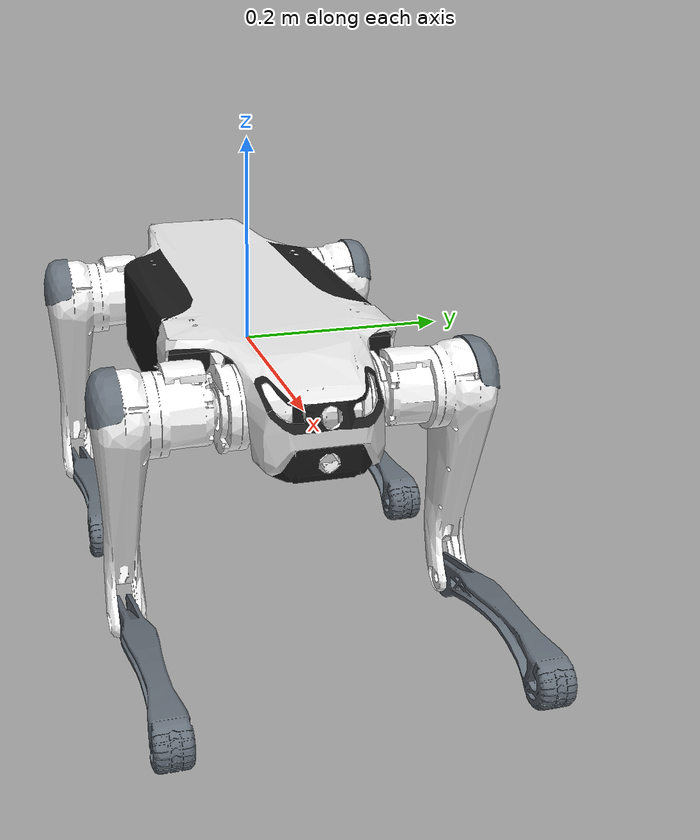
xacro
<?xml version="1.0"?>

<robot name="lite3" xmlns:xacro="http://www.ros.org/wiki/xacro">

  <xacro:include filename="$(find lite3_description)/xacro/const.xacro"/>
  <xacro:include filename="$(find lite3_description)/xacro/leg.xacro"/>

  <xacro:arg name="GAZEBO" default="false"/>
  <xacro:arg name="CLASSIC" default="false"/>

  <xacro:if value="$(arg GAZEBO)">
    <xacro:if value="$(arg CLASSIC)">
      <xacro:include filename="$(find lite3_description)/xacro/gazebo_classic.xacro"/>
    </xacro:if>
    <xacro:unless value="$(arg CLASSIC)">
      <xacro:include filename="$(find lite3_description)/xacro/gazebo.xacro"/>
    </xacro:unless>
  </xacro:if>
  <xacro:unless value="$(arg GAZEBO)">
    <xacro:include filename="$(find lite3_description)/xacro/ros2_control.xacro"/>
  </xacro:unless>

  <link name="base">
    <visual>
      <origin rpy="0 0 0" xyz="0 0 0"/>
      <geometry>
        <box size="0.001 0.001 0.001"/>
      </geometry>
    </visual>
  </link>

  <joint name="floating_base" type="fixed">
    <origin rpy="0 0 0" xyz="0 0 0"/>
    <parent link="base"/>
    <child link="TORSO"/>
  </joint>

  <link name="TORSO">
    <visual>
      <origin rpy="0 0 3.1416" xyz="0.0 0.0 0.0"/>
      <geometry>
        <mesh filename="file://$(find lite3_description)/meshes/Lite3.dae"/>
      </geometry>
    </visual>
    <collision>
      <geometry>
        <box size="0.35 0.184 0.08"/>
      </geometry>
    </collision>
    <inertial>
      <origin xyz="0.004098 -0.000663 -0.002069"/>
      <mass value="4.130"/>
      <inertia ixx="0.016982120" ixy="2.1294E-05" ixz="6.0763E-05" iyy="0.030466501" iyz="1.7968E-05"
               izz="0.042609956"/>
    </inertial>
  </link>

  <joint name="imu_joint" type="fixed">
    <parent link="TORSO"/>
    <child link="imu_link"/>
    <origin rpy="0 0 0" xyz="0 0 0"/>
  </joint>

  <link name="imu_link">
    <inertial>
      <mass value="0.001"/>
      <origin rpy="0 0 0" xyz="0 0 0"/>
      <inertia ixx="0.0001" ixy="0" ixz="0" iyy="0.0001" iyz="0" izz="0.0001"/>
    </inertial>
    <visual>
      <origin rpy="0 0 0" xyz="0 0 0"/>
      <geometry>
        <box size="0.001 0.001 0.001"/>
      </geometry>
    </visual>
    <collision>
      <origin rpy="0 0 0" xyz="0 0 0"/>
      <geometry>
        <box size=".001 .001 .001"/>
      </geometry>
    </collision>
  </link>

  <xacro:leg name="FR" mirror="-1" mirror_dae="False" front_hind="1" front_hind_dae="True"/>
  <xacro:leg name="FL" mirror="1" mirror_dae="True" front_hind="1" front_hind_dae="True"/>
  <xacro:leg name="HR" mirror="-1" mirror_dae="False" front_hind="-1" front_hind_dae="False"/>
  <xacro:leg name="HL" mirror="1" mirror_dae="True" front_hind="-1" front_hind_dae="False"/>

</robot>

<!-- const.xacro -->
<robot xmlns:xacro="http://www.ros.org/wiki/xacro">

  <xacro:property name="damping" value="0.0"/>
  <xacro:property name="friction" value="0.1"/>

  <xacro:property name="thigh_offset" value="0.0955"/>

  <xacro:property name="leg_offset_x" value="0.1745"/>
  <xacro:property name="leg_offset_y" value="0.062"/>

  <!-- hip (left front) -->
  <xacro:property name="hip_mass" value="0.428"/>
  <xacro:property name="hip_com_x" value="-0.0047"/>
  <xacro:property name="hip_com_y" value="-0.0091"/>
  <xacro:property name="hip_com_z" value="-0.0018"/>
  <xacro:property name="hip_ixx" value="0.00014538"/>
  <xacro:property name="hip_ixy" value="8.1579E-07"/>
  <xacro:property name="hip_ixz" value="-1.264E-05"/>
  <xacro:property name="hip_iyy" value="0.00024024"/>
  <xacro:property name="hip_iyz" value="1.3443E-06"/>
  <xacro:property name="hip_izz" value="0.00013038"/>

  <!-- thigh -->
  <xacro:property name="thigh_mass" value="0.61"/>
  <xacro:property name="thigh_com_x" value="-0.00523"/>
  <xacro:property name="thigh_com_y" value="-0.0216"/>
  <xacro:property name="thigh_com_z" value="-0.0273"/>
  <xacro:property name="thigh_ixx" value="0.001"/>
  <xacro:property name="thigh_ixy" value="-2.5E-06"/>
  <xacro:property name="thigh_ixz" value="-1.12E-04"/>
  <xacro:property name="thigh_iyy" value="0.00116"/>
  <xacro:property name="thigh_iyz" value="3.75E-07"/>
  <xacro:property name="thigh_izz" value="2.68E-04"/>

  <!-- foot -->
  <xacro:property name="foot_mass" value="0.06"/>
  <xacro:property name="foot_radius" value="0.013"/>

</robot>

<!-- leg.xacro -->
<robot xmlns:xacro="http://www.ros.org/wiki/xacro">
  <xacro:include filename="$(find lite3_description)/xacro/transmission.xacro"/>

  <xacro:macro name="leg" params="name mirror mirror_dae front_hind front_hind_dae">

    <joint name="${name}_HipX" type="revolute">
      <xacro:if value="${(mirror_dae == False) and (front_hind_dae == True)}">
        <origin rpy="0 0 0" xyz="${leg_offset_x} ${-leg_offset_y} 0"/>
      </xacro:if>
      <xacro:if value="${(mirror_dae == True) and (front_hind_dae == True)}">
        <origin rpy="0 0 0" xyz="${leg_offset_x} ${leg_offset_y} 0"/>
      </xacro:if>
      <xacro:if value="${(mirror_dae == False) and (front_hind_dae == False)}">
        <origin rpy="0 0 0" xyz="${-leg_offset_x} ${-leg_offset_y} 0"/>
      </xacro:if>
      <xacro:if value="${(mirror_dae == True) and (front_hind_dae == False)}">
        <origin rpy="0 0 0" xyz="${-leg_offset_x} ${leg_offset_y} 0"/>
      </xacro:if>
      <parent link="TORSO"/>
      <child link="${name}_HIP"/>
      <axis xyz="-1 0 0"/>
      <dynamics damping="${damping}" friction="${friction}"/>
      <limit lower="-0.42" upper="0.42" effort="24" velocity="26"/>
    </joint>

    <link name="${name}_HIP">
      <inertial>
        <inertia ixx="0.00014538" ixy="8.1579E-07" ixz="-1.264E-05" iyy="0.00024024" iyz="1.3443E-06" izz="0.00013038"/>
        <origin xyz="${hip_com_x*front_hind} ${hip_com_y*mirror} ${hip_com_z}"/>
        <mass value="${hip_mass}"/>
        <inertia
            ixx="${hip_ixx}" ixy="${hip_ixy*mirror*front_hind}" ixz="${hip_ixz*front_hind}"
            iyy="${hip_iyy}" iyz="${hip_iyz*mirror}"
            izz="${hip_izz}"/>
      </inertial>
      <visual>
        <origin rpy="0 0 0" xyz="${-0.05*front_hind} 0.0 0.0"/>
        <geometry>
          <mesh filename="file://$(find lite3_description)/meshes/${name}_HIP.dae"/>
        </geometry>
      </visual>
    </link>

    <joint name="${name}_HipY" type="revolute">
      <origin xyz="0 ${thigh_offset*mirror} 0"/>
      <parent link="${name}_HIP"/>
      <child link="${name}_THIGH"/>
      <axis xyz="0 -1 0"/>
      <dynamics damping="${damping}" friction="${friction}"/>
      <limit lower="-2.67" upper="0.314" effort="24" velocity="26"/>
    </joint>

    <link name="${name}_THIGH">
      <inertial>
        <origin rpy="0 0 0" xyz="${thigh_com_x} ${thigh_com_y*mirror} ${thigh_com_z}"/>
        <mass value="${thigh_mass}"/>
        <inertia
            ixx="${thigh_ixx}" ixy="${thigh_ixy*mirror}" ixz="${thigh_ixz}"
            iyy="${thigh_iyy}" iyz="${thigh_iyz*mirror}"
            izz="${thigh_izz}"/>
        <inertia ixx="0.001" ixy="-2.5E-06" ixz="-1.12E-04" iyy="0.00116" iyz="3.75E-07" izz="2.68E-04"/>
      </inertial>
      <visual>
        <origin rpy="0 0 0" xyz="0.0 0.0 0.0"/>
        <geometry>
          <xacro:if value="${mirror_dae == True}">
            <mesh filename="file://$(find lite3_description)/meshes/l_thigh.dae"/>
          </xacro:if>
          <xacro:if value="${mirror_dae == False}">
            <mesh filename="file://$(find lite3_description)/meshes/r_thigh.dae"/>
          </xacro:if>
        </geometry>
      </visual>
      <collision>
        <origin xyz="0 0 -0.08"/>
        <geometry>
          <box size="0.02 0.02 0.16"/>
        </geometry>
      </collision>
    </link>

    <joint name="${name}_Knee" type="revolute">
      <origin xyz="0 0 -0.20"/>
      <parent link="${name}_THIGH"/>
      <child link="${name}_SHANK"/>
      <axis xyz="0 -1 0"/>
      <dynamics damping="${damping}" friction="${friction}"/>
      <limit lower="0.6" upper="2.72" effort="36" velocity="17"/>
    </joint>

    <link name="${name}_SHANK">
      <inertial>
        <origin xyz="0.00585 -8.732E-07 -0.12"/>
        <mass value="0.115"/>
        <inertia ixx="6.68E-04" ixy="-1.24E-08" ixz="6.91E-06" iyy="6.86E-04" iyz="5.65E-09" izz="3.155E-05"/>
      </inertial>
      <visual>
        <origin rpy="3.14 -1.42 0" xyz="0.0 0.0 0.0"/>
        <geometry>
          <mesh filename="file://$(find lite3_description)/meshes/SHANK.dae"/>
        </geometry>
      </visual>
      <collision>
        <origin xyz="0 0 -0.09"/>
        <geometry>
          <box size="0.02 0.02 0.18"/>
        </geometry>
      </collision>
    </link>

    <joint name="${name}_Ankle" type="fixed">
      <origin xyz="0 0 -0.21"/>
      <parent link="${name}_SHANK"/>
      <child link="${name}_FOOT"/>
    </joint>

    <link name="${name}_FOOT">
      <inertial>
        <mass value="${foot_mass}"/>
        <inertia
            ixx="${(2*foot_mass)/5.0*(foot_radius*foot_radius)}" ixy="0.0" ixz="0.0"
            iyy="${(2*foot_mass)/5.0*(foot_radius*foot_radius)}" iyz="0.0"
            izz="${(2*foot_mass)/5.0*(foot_radius*foot_radius)}"/>
      </inertial>
      <collision>
        <geometry>
          <sphere radius="${foot_radius}"/>
        </geometry>
      </collision>
    </link>

    <gazebo reference="${name}_HIP">
      <mu1>0.2</mu1>
      <mu2>0.2</mu2>
    </gazebo>

    <gazebo reference="${name}_THIGH">
      <mu1>0.2</mu1>
      <mu2>0.2</mu2>
      <self_collide>0</self_collide>
      <kp value="1000000.0"/>
      <kd value="100.0"/>
    </gazebo>

    <gazebo reference="${name}_SHANK">
      <mu1>0.6</mu1>
      <mu2>0.6</mu2>
      <self_collide>1</self_collide>
    </gazebo>

    <gazebo reference="${name}_FOOT">
      <mu1>0.6</mu1>
      <mu2>0.6</mu2>
      <self_collide>1</self_collide>
      <kp value="1000000.0"/>
      <kd value="100.0"/>
    </gazebo>

    <xacro:leg_transmission name="${name}"/>

  </xacro:macro>

</robot>
